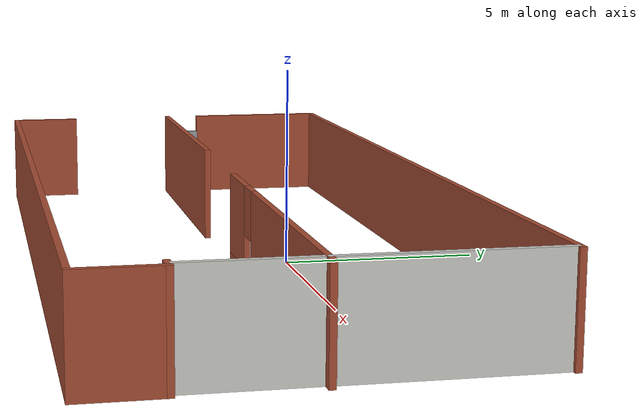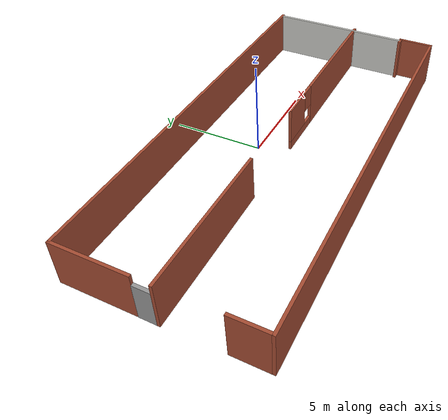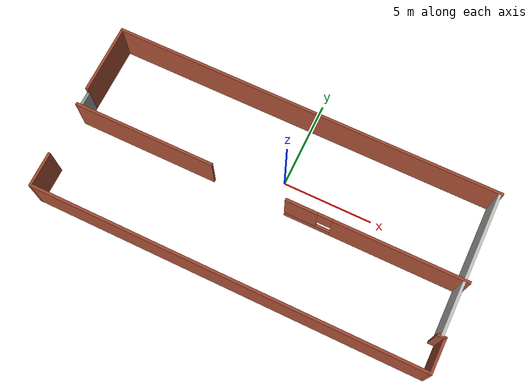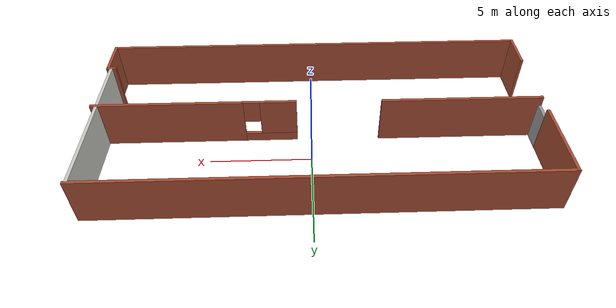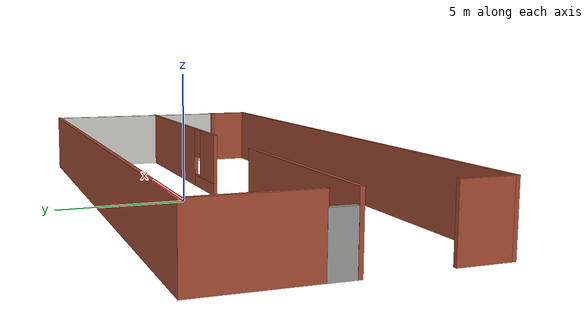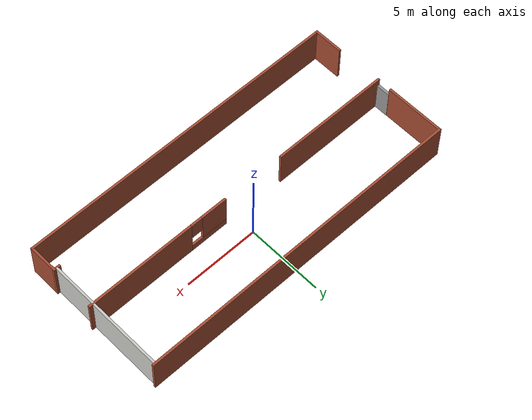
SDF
<?xml version='1.0'?>
<sdf version='1.6'>
  <model name='Almacen_RobotPallet'>
    <pose frame=''>-0.393239 -1.50937 0 0 -0 0</pose>
    <link name='Door_0'>
      <collision name='Door_0_Collision'>
        <geometry>
          <box>
            <size>0.9 0.17 2</size>
          </box>
        </geometry>
        <pose frame=''>0 0 1 0 -0 0</pose>
      </collision>
      <visual name='Door_0_Visual'>
        <pose frame=''>0 0 1 0 -0 0</pose>
        <geometry>
          <box>
            <size>0.9 0.17 2</size>
          </box>
        </geometry>
        <material>
          <script>
            <uri>file://media/materials/scripts/gazebo.material</uri>
            <name>Gazebo/Grey</name>
          </script>
        </material>
      </visual>
      <pose frame=''>-10.9928 0.560426 0 0 -0 1.56688</pose>
    </link>
    <link name='Wall_1'>
      <collision name='Wall_1_Collision'>
        <geometry>
          <box>
            <size>22 0.15 2.5</size>
          </box>
        </geometry>
        <pose frame=''>0 0 1.25 0 -0 0</pose>
      </collision>
      <visual name='Wall_1_Visual'>
        <pose frame=''>0 0 1.25 0 -0 0</pose>
        <geometry>
          <box>
            <size>22 0.15 2.5</size>
          </box>
        </geometry>
        <material>
          <script>
            <uri>file://media/materials/scripts/gazebo.material</uri>
            <name>Gazebo/Bricks</name>
          </script>
          <ambient>1 1 1 1</ambient>
        </material>
        <meta>
          <layer>0</layer>
        </meta>
      </visual>
      <pose frame=''>0.006161 -4.91576 0 0 -0 0</pose>
    </link>
    <link name='Wall_11'>
      <pose frame=''>6.08129 -0.036029 0 0 -0 3.14159</pose>
      <visual name='Wall_11_Visual_0'>
        <pose frame=''>-1.30332 0 1.25 0 -0 0</pose>
        <geometry>
          <box>
            <size>7.39335 0.15 2.5</size>
          </box>
        </geometry>
        <material>
          <script>
            <uri>file://media/materials/scripts/gazebo.material</uri>
            <name>Gazebo/Bricks</name>
          </script>
          <ambient>1 1 1 1</ambient>
        </material>
        <meta>
          <layer>0</layer>
        </meta>
      </visual>
      <collision name='Wall_11_Collision_0'>
        <geometry>
          <box>
            <size>7.39335 0.15 2.5</size>
          </box>
        </geometry>
        <pose frame=''>-1.30332 0 1.25 0 -0 0</pose>
      </collision>
      <visual name='Wall_11_Visual_1'>
        <pose frame=''>3.69668 0 0.25 0 -0 0</pose>
        <geometry>
          <box>
            <size>2.60665 0.15 0.5</size>
          </box>
        </geometry>
        <material>
          <script>
            <uri>file://media/materials/scripts/gazebo.material</uri>
            <name>Gazebo/Bricks</name>
          </script>
          <ambient>1 1 1 1</ambient>
        </material>
        <meta>
          <layer>0</layer>
        </meta>
      </visual>
      <collision name='Wall_11_Collision_1'>
        <geometry>
          <box>
            <size>2.60665 0.15 0.5</size>
          </box>
        </geometry>
        <pose frame=''>3.69668 0 0.25 0 -0 0</pose>
      </collision>
      <visual name='Wall_11_Visual_2'>
        <pose frame=''>4.09668 0 1.5 0 -0 0</pose>
        <geometry>
          <box>
            <size>1.80665 0.15 2</size>
          </box>
        </geometry>
        <material>
          <script>
            <uri>file://media/materials/scripts/gazebo.material</uri>
            <name>Gazebo/Bricks</name>
          </script>
          <ambient>1 1 1 1</ambient>
        </material>
        <meta>
          <layer>0</layer>
        </meta>
      </visual>
      <collision name='Wall_11_Collision_2'>
        <geometry>
          <box>
            <size>1.80665 0.15 2</size>
          </box>
        </geometry>
        <pose frame=''>4.09668 0 1.5 0 -0 0</pose>
      </collision>
      <visual name='Wall_11_Visual_3'>
        <pose frame=''>2.79335 0 1.9 0 -0 0</pose>
        <geometry>
          <box>
            <size>0.8 0.15 1.2</size>
          </box>
        </geometry>
        <material>
          <script>
            <uri>file://media/materials/scripts/gazebo.material</uri>
            <name>Gazebo/Bricks</name>
          </script>
          <ambient>1 1 1 1</ambient>
        </material>
        <meta>
          <layer>0</layer>
        </meta>
      </visual>
      <collision name='Wall_11_Collision_3'>
        <geometry>
          <box>
            <size>0.8 0.15 1.2</size>
          </box>
        </geometry>
        <pose frame=''>2.79335 0 1.9 0 -0 0</pose>
      </collision>
    </link>
    <link name='Wall_13'>
      <collision name='Wall_13_Collision'>
        <geometry>
          <box>
            <size>22 0.15 2.5</size>
          </box>
        </geometry>
        <pose frame=''>0 0 1.25 0 -0 0</pose>
      </collision>
      <visual name='Wall_13_Visual'>
        <pose frame=''>0 0 1.25 0 -0 0</pose>
        <geometry>
          <box>
            <size>22 0.15 2.5</size>
          </box>
        </geometry>
        <material>
          <script>
            <uri>file://media/materials/scripts/gazebo.material</uri>
            <name>Gazebo/Bricks</name>
          </script>
          <ambient>1 1 1 1</ambient>
        </material>
        <meta>
          <layer>0</layer>
        </meta>
      </visual>
      <pose frame=''>-0.063767 4.91576 0 0 -0 3.14159</pose>
    </link>
    <link name='Wall_17'>
      <collision name='Wall_17_Collision'>
        <geometry>
          <box>
            <size>8 0.15 2.5</size>
          </box>
        </geometry>
        <pose frame=''>0 0 1.25 0 -0 0</pose>
      </collision>
      <visual name='Wall_17_Visual'>
        <pose frame=''>0 0 1.25 0 -0 0</pose>
        <geometry>
          <box>
            <size>8 0.15 2.5</size>
          </box>
        </geometry>
        <material>
          <script>
            <uri>file://media/materials/scripts/gazebo.material</uri>
            <name>Gazebo/Bricks</name>
          </script>
          <ambient>1 1 1 1</ambient>
        </material>
        <meta>
          <layer>0</layer>
        </meta>
      </visual>
      <pose frame=''>-7.08129 0.033931 0 0 -0 0</pose>
    </link>
    <link name='Wall_20'>
      <collision name='Wall_20_Collision'>
        <geometry>
          <box>
            <size>4 0.15 2.5</size>
          </box>
        </geometry>
        <pose frame=''>0 0 1.25 0 -0 0</pose>
      </collision>
      <visual name='Wall_20_Visual'>
        <pose frame=''>0 0 1.25 0 -0 0</pose>
        <geometry>
          <box>
            <size>4 0.15 2.5</size>
          </box>
        </geometry>
        <material>
          <script>
            <uri>file://media/materials/scripts/gazebo.material</uri>
            <name>Gazebo/Bricks</name>
          </script>
          <ambient>1 1 1 1</ambient>
        </material>
        <meta>
          <layer>0</layer>
        </meta>
      </visual>
      <pose frame=''>-10.9937 2.99076 0 0 -0 -1.5708</pose>
    </link>
    <link name='Wall_25'>
      <collision name='Wall_25_Collision'>
        <geometry>
          <box>
            <size>5 0.15 2.5</size>
          </box>
        </geometry>
        <pose frame=''>0 0 1.25 0 -0 0</pose>
      </collision>
      <visual name='Wall_25_Visual'>
        <pose frame=''>0 0 1.25 0 -0 0</pose>
        <geometry>
          <box>
            <size>5 0.15 2.5</size>
          </box>
        </geometry>
        <material>
          <script>
            <uri>file://media/materials/scripts/gazebo.material</uri>
            <name>Gazebo/CeilingTiled</name>
          </script>
          <ambient>1 1 1 1</ambient>
        </material>
        <meta>
          <layer>0</layer>
        </meta>
      </visual>
      <pose frame=''>10.7678 2.4228 0 0 -0 -1.5708</pose>
    </link>
    <link name='Wall_27'>
      <collision name='Wall_27_Collision'>
        <geometry>
          <box>
            <size>3 0.15 2.5</size>
          </box>
        </geometry>
        <pose frame=''>0 0 1.25 0 -0 0</pose>
      </collision>
      <visual name='Wall_27_Visual'>
        <pose frame=''>0 0 1.25 0 -0 0</pose>
        <geometry>
          <box>
            <size>3 0.15 2.5</size>
          </box>
        </geometry>
        <material>
          <script>
            <uri>file://media/materials/scripts/gazebo.material</uri>
            <name>Gazebo/CeilingTiled</name>
          </script>
          <ambient>1 1 1 1</ambient>
        </material>
        <meta>
          <layer>0</layer>
        </meta>
      </visual>
      <pose frame=''>10.7578 -1.5472 0 0 -0 -1.5708</pose>
    </link>
    <link name='Wall_29'>
      <collision name='Wall_29_Collision'>
        <geometry>
          <box>
            <size>0.5 0.15 2.5</size>
          </box>
        </geometry>
        <pose frame=''>0 0 1.25 0 -0 0</pose>
      </collision>
      <visual name='Wall_29_Visual'>
        <pose frame=''>0 0 1.25 0 -0 0</pose>
        <geometry>
          <box>
            <size>0.5 0.15 2.5</size>
          </box>
        </geometry>
        <material>
          <script>
            <uri>file://media/materials/scripts/gazebo.material</uri>
            <name>Gazebo/Bricks</name>
          </script>
          <ambient>1 1 1 1</ambient>
        </material>
        <meta>
          <layer>0</layer>
        </meta>
      </visual>
      <pose frame=''>10.7562 -3.06576 0 0 -0 3.14159</pose>
    </link>
    <link name='Wall_3'>
      <collision name='Wall_3_Collision'>
        <geometry>
          <box>
            <size>2 0.15 2.5</size>
          </box>
        </geometry>
        <pose frame=''>0 0 1.25 0 -0 0</pose>
      </collision>
      <visual name='Wall_3_Visual'>
        <pose frame=''>0 0 1.25 0 -0 0</pose>
        <geometry>
          <box>
            <size>2 0.15 2.5</size>
          </box>
        </geometry>
        <material>
          <script>
            <uri>file://media/materials/scripts/gazebo.material</uri>
            <name>Gazebo/Bricks</name>
          </script>
          <ambient>1 1 1 1</ambient>
        </material>
        <meta>
          <layer>0</layer>
        </meta>
      </visual>
      <pose frame=''>10.9312 -3.99076 0 0 -0 1.5708</pose>
    </link>
    <link name='Wall_5'>
      <collision name='Wall_5_Collision'>
        <geometry>
          <box>
            <size>2 0.15 2.5</size>
          </box>
        </geometry>
        <pose frame=''>0 0 1.25 0 -0 0</pose>
      </collision>
      <visual name='Wall_5_Visual'>
        <pose frame=''>0 0 1.25 0 -0 0</pose>
        <geometry>
          <box>
            <size>2 0.15 2.5</size>
          </box>
        </geometry>
        <material>
          <script>
            <uri>file://media/materials/scripts/gazebo.material</uri>
            <name>Gazebo/Bricks</name>
          </script>
          <ambient>1 1 1 1</ambient>
        </material>
        <meta>
          <layer>0</layer>
        </meta>
      </visual>
      <pose frame=''>-10.9188 -3.99076 0 0 -0 1.5708</pose>
    </link>
    <static>1</static>
  </model>
</sdf>
